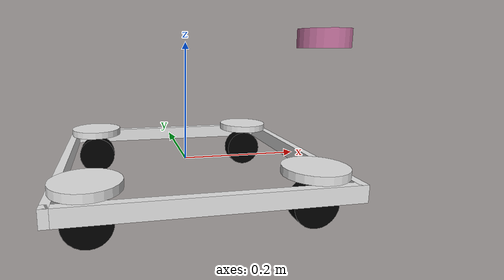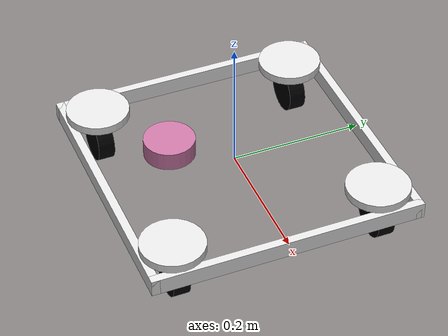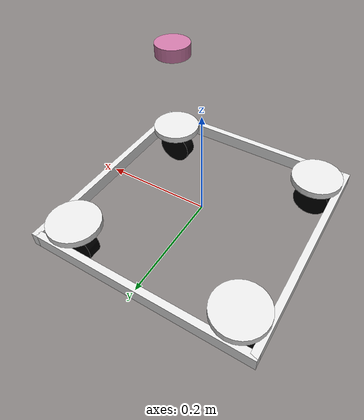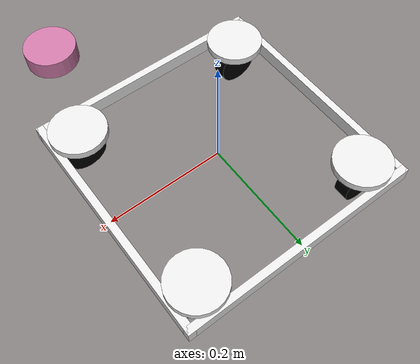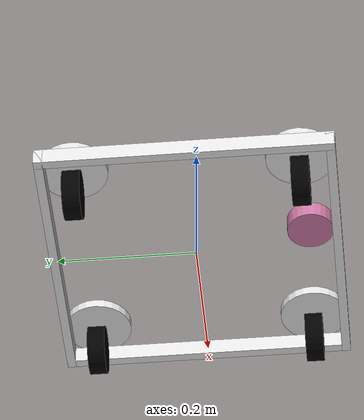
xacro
<?xml version="1.0"?>
<robot name="ghost_15" xmlns:xacro="http://ros.org/wiki/xacro">

    <xacro:include filename="$(find ghost_swerve)/urdf/swerve_v2_macros.xacro"/>

    <xacro:property name="d2r" value="${3.14159/180}"/>
    <xacro:property name="in2m" value="${0.0254}"/>
    <xacro:property name="r_wheel" value="${1.375*in2m}"/>
    <xacro:property name="width_wheel" value="${1.0*in2m}"/>
    <xacro:property name="com_radius" value="0.02"/>

    <xacro:property name="module_vertical_offset" value="${2.75*in2m}"/>
    <xacro:property name="module_to_wheel_vertical_offset" value="${3.907*in2m}"/>
    <xacro:property name="module_horizontal_offset" value="${12.5*in2m/2.0}"/>

    <link name="base_link">
        <visual>
        <origin xyz="0 0 0" rpy="0 0 0"/>
        <geometry>
            <box size="0 0 0"/>
        </geometry>
            <material name="silver">
                <color rgba="0.9 0.9 0.9 1.0"/>
            </material>
        </visual>

        <!--Inertia estimated for solid cylinder of radius 9" and height 3" with mass 7kg-->
        <inertial>
            <origin xyz="0 0 0" rpy="0 0 0"/>
            <mass value="10"/>
            <inertia
                ixx="0.094839" ixy="0.0" ixz="0.0"
                iyy="0.094839" iyz="0.0"
                izz="0.182903"/>
        </inertial>

        <gazebo>
            <maxVel>3.0</maxVel>
        </gazebo>
    </link>

    <link name="base_footprint">
        <origin xyz="0 0 0" rpy="0 0 0"/>
    </link>

    <joint name="base_footprint_joint" type="fixed">
        <parent link="base_link"/>
        <child link="base_footprint"/>
        <origin xyz="0 0 -${2.4375*in2m}" rpy="0 0 0"/>
        <axis xyz="0 0 1"/>
    </joint>

    <link name="front_bar">
        <visual>
        <origin xyz="0 0 0" rpy="0 0 0"/>
        <geometry>
            <box size="${0.5*in2m} ${16.5*in2m} ${1.0*in2m}"/>
        </geometry>
            <material name="silver">
                <color rgba="0.9 0.9 0.9 1.0"/>
            </material>
        </visual>
    </link>

    <joint name="front_bar_joint" type="fixed">
        <parent link="base_link"/>
        <child link="front_bar"/>
        <origin xyz="${8.0*in2m} 0 0" rpy="0 0 0"/>
        <axis xyz="0 0 1"/>
    </joint>

    <link name="back_bar">
        <visual>
        <origin xyz="0 0 0" rpy="0 0 0"/>
        <geometry>
            <box size="${0.5*in2m} ${16.5*in2m} ${1.0*in2m}"/>
        </geometry>
            <material name="silver">
                <color rgba="0.9 0.9 0.9 1.0"/>
            </material>
        </visual>
    </link>

    <joint name="back_bar_joint" type="fixed">
        <parent link="base_link"/>
        <child link="back_bar"/>
        <origin xyz="-${8.0*in2m} 0 0" rpy="0 0 0"/>
        <axis xyz="0 0 1"/>
    </joint>

    <link name="left_bar">
        <visual>
        <origin xyz="0 0 0" rpy="0 0 0"/>
        <geometry>
            <box size="${0.5*in2m} ${16.5*in2m} ${1.0*in2m}"/>
        </geometry>
            <material name="silver">
                <color rgba="0.9 0.9 0.9 1.0"/>
            </material>
        </visual>
    </link>

    <joint name="left_bar_joint" type="fixed">
        <parent link="base_link"/>
        <child link="left_bar"/>
        <origin xyz="0 ${8.0*in2m} 0" rpy="0 0 ${90.0*d2r}"/>
        <axis xyz="0 0 1"/>
    </joint>

    <link name="right_bar">
        <visual>
        <origin xyz="0 0 0" rpy="0 0 0"/>
        <geometry>
            <box size="${0.5*in2m} ${16.5*in2m} ${1.0*in2m}"/>
        </geometry>
            <material name="silver">
                <color rgba="0.9 0.9 0.9 1.0"/>
            </material>
    </visual>
    </link>

    <joint name="right_bar_joint" type="fixed">
        <parent link="base_link"/>
        <child link="right_bar"/>
        <origin xyz="0 -${8.0*in2m} 0" rpy="0 0 ${90.0*d2r}"/>
        <axis xyz="0 0 1"/>
    </joint>

    <!-- Steering Modules -->
    <xacro:steering_macro id="front_left"></xacro:steering_macro>
    <xacro:steering_macro id="front_right"></xacro:steering_macro>
    <xacro:steering_macro id="back_left"></xacro:steering_macro>
    <xacro:steering_macro id="back_right"></xacro:steering_macro>

    <!-- Wheel Modules -->
    <xacro:wheel_macro id="front_left" r_wheel="${r_wheel}" width_wheel="${width_wheel}" collision_factor="8"></xacro:wheel_macro>
    <xacro:wheel_macro id="front_right" r_wheel="${r_wheel}" width_wheel="${width_wheel}" collision_factor="8"></xacro:wheel_macro>
    <xacro:wheel_macro id="back_left" r_wheel="${r_wheel}" width_wheel="${width_wheel}" collision_factor="8"></xacro:wheel_macro>
    <xacro:wheel_macro id="back_right" r_wheel="${r_wheel}" width_wheel="${width_wheel}" collision_factor="8"></xacro:wheel_macro>
    <!-- Joints -->
    <joint name="steering_joint_back_left" type="continuous">
        <parent link="base_link"/>
        <child link="steering_link_back_left"/>
        <origin xyz="-${module_horizontal_offset} ${module_horizontal_offset} ${module_vertical_offset}" rpy="0 0 0"/>
        <dynamics damping="0.0" friction="0.0"/>
        <axis xyz="0 0 1"/>
    </joint>

    <joint name="steering_joint_back_right" type="continuous">
        <parent link="base_link"/>
        <child link="steering_link_back_right"/>
        <origin xyz="-${module_horizontal_offset} -${module_horizontal_offset} ${module_vertical_offset}" rpy="0 0 0"/>
        <dynamics damping="0.0" friction="0.0"/>
        <axis xyz="0 0 1"/>
    </joint>

    <joint name="steering_joint_front_left" type="continuous">
        <parent link="base_link"/>
        <child link="steering_link_front_left"/>
        <origin xyz="${module_horizontal_offset} ${module_horizontal_offset} ${module_vertical_offset}" rpy="0 0 0"/>
        <dynamics damping="0.0" friction="0.0"/>
        <axis xyz="0 0 1"/>
    </joint>

    <joint name="steering_joint_front_right" type="continuous">
        <parent link="base_link"/>
        <child link="steering_link_front_right"/>
        <origin xyz="${module_horizontal_offset} -${module_horizontal_offset} ${module_vertical_offset} " rpy="0 0 0"/>
        <dynamics damping="0.0" friction="0.0"/>
        <axis xyz="0 0 1"/>
    </joint>

    <joint name="wheel_joint_back_left" type="continuous">
        <parent link="steering_link_back_left"/>
        <child link="wheel_link_back_left"/>
        <origin xyz="0 0 -${module_to_wheel_vertical_offset}" rpy="${-90*d2r} 0 0"/>
        <dynamics damping="0.0" friction="0.0"/>
        <axis xyz="0 0 1"/>
    </joint>

    <joint name="wheel_joint_back_right" type="continuous">
        <parent link="steering_link_back_right"/>
        <child link="wheel_link_back_right"/>
        <origin xyz="0 0 -${module_to_wheel_vertical_offset}" rpy="${-90*d2r} 0 0"/>
        <dynamics damping="0.0" friction="0.0"/>
        <axis xyz="0 0 1"/>
    </joint>

    <joint name="wheel_joint_front_left" type="continuous">
        <parent link="steering_link_front_left"/>
        <child link="wheel_link_front_left"/>
        <origin xyz="0 0 -${module_to_wheel_vertical_offset}" rpy="${-90*d2r} 0 0"/>
        <dynamics damping="0.0" friction="0.0"/>
        <axis xyz="0 0 1"/>
    </joint>

    <joint name="wheel_joint_front_right" type="continuous">
        <parent link="steering_link_front_right"/>
        <child link="wheel_link_front_right"/>
        <origin xyz="0 0 -${module_to_wheel_vertical_offset}" rpy="${-90*d2r} 0 0"/>
        <dynamics damping="0.0" friction="0.0"/>
        <axis xyz="0 0 1"/>
    </joint>

    <!-- Sensors -->
    <link name="lidar_link">
        <inertial>
            <origin xyz="0.0 0 0.0" rpy="0 0 0"/>
            <mass value="0.125"/>
            <inertia ixx="0.001"  ixy="0"  ixz="0" iyy="0.001" iyz="0" izz="0.001" />
        </inertial>

        <visual>
            <origin xyz="0 0 0" rpy="0 0 0"/>
            <geometry>
            <cylinder radius="${0.06985/2}" length="0.0254"/>
            </geometry>
        </visual>
    </link>

    <joint name="lidar_joint" type="fixed">
        <parent link="base_link"/>
        <child link="lidar_link"/>
        <origin xyz="${6.25*in2m} -${6.25*in2m} ${8*in2m}" rpy="0 0 ${90.0*d2r}"/>
    </joint>
</robot>

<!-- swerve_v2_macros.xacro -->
<robot xmlns:xacro="http://www.ros.org/wiki/xacro">
    <!-- Steering Module Macro -->
    <xacro:macro name="steering_macro" params="id">
    <link name="steering_link_${id}">
        <inertial>
            <origin xyz="0 0 0" rpy="0 0 0"/>
            <mass value="0.4545"/>
            <inertia
                ixx="0.000975" ixy="0.0" ixz="0.0"
                iyy="0.000975" iyz="0.0"
                izz="0.001902"/>
        </inertial>
        <visual>
            <origin xyz="0 0 -0.05" rpy="0 0 0"/>
            <geometry>
                <cylinder radius="0.04826" length="0.0127"/>
            </geometry>
            <material name="silver">
                <color rgba="0.9 0.9 0.9 1.0"/>
            </material>
        </visual>
    </link>
    </xacro:macro>

    <!-- Wheel Macro -->
    <xacro:macro name="wheel_macro" params="id r_wheel width_wheel collision_factor">
    <link name="wheel_link_${id}">
            <visual>
                <geometry>
                    <cylinder radius="${r_wheel}" length="${width_wheel}"/>
                </geometry>
                <material name="black">
                    <color rgba="0 0 0 1.0"/>
                </material>
            </visual>

            <collision>
                <origin xyz="0 0 0" rpy="0 0 0"/>
                <geometry>
                    <cylinder radius="${r_wheel}" length="${width_wheel/collision_factor}"/>
                </geometry>
            </collision>

            <!--Inertia estimated for solid cylinder of radius 2.5" and height 1" with mass 1 lb-->
            <inertial>
                <origin xyz="0 0 0" rpy="0 0 0"/>
                <mass value="0.4545"/>
                <inertia
                    ixx="0.000482" ixy="0.0" ixz="0.0"
                    iyy="0.000482" iyz="0.0"
                    izz="0.000914"/>
            </inertial>
    </link>

    <gazebo reference="wheel_${id}">
        <collision>
            <origin xyz="0 0 0" rpy="0 0 0"/>
            <geometry>
                <cylinder>
                    <radius>${r_wheel}</radius>
                    <length>${width_wheel/collision_factor}</length>
                </cylinder>
            </geometry>

            <surface>
                <friction>
                    <torsional>
                        <coefficient>1.0</coefficient>
                        <patch_radius>0.01</patch_radius>
                    </torsional>
                </friction>
            </surface>
        </collision>

        <material>Gazebo/White</material>
    </gazebo>
    </xacro:macro>
</robot>
